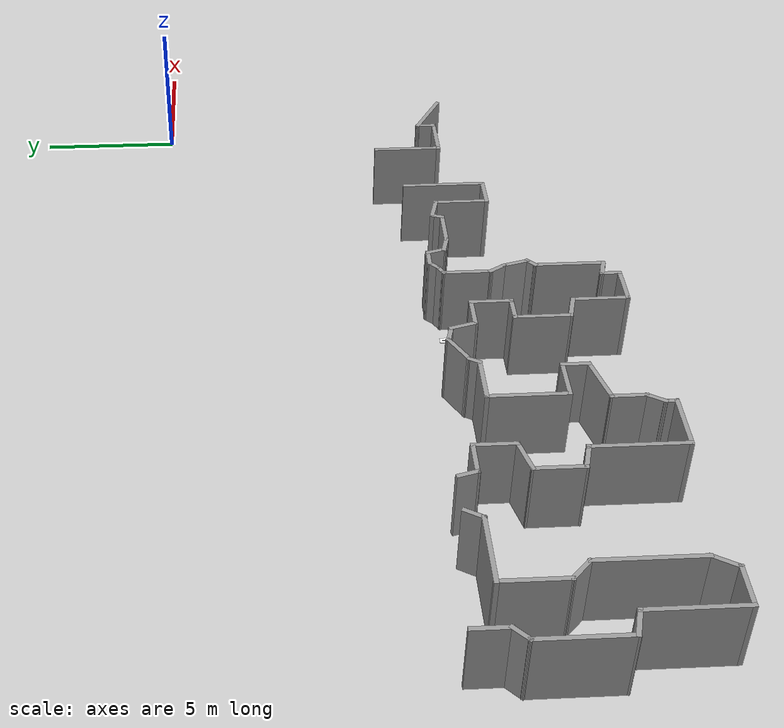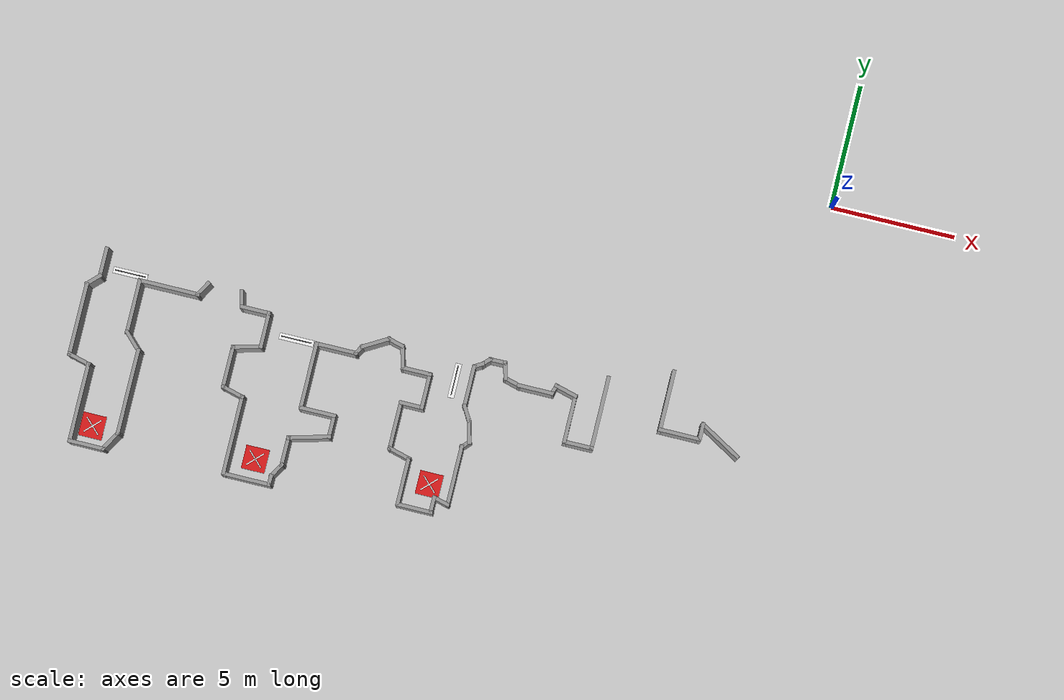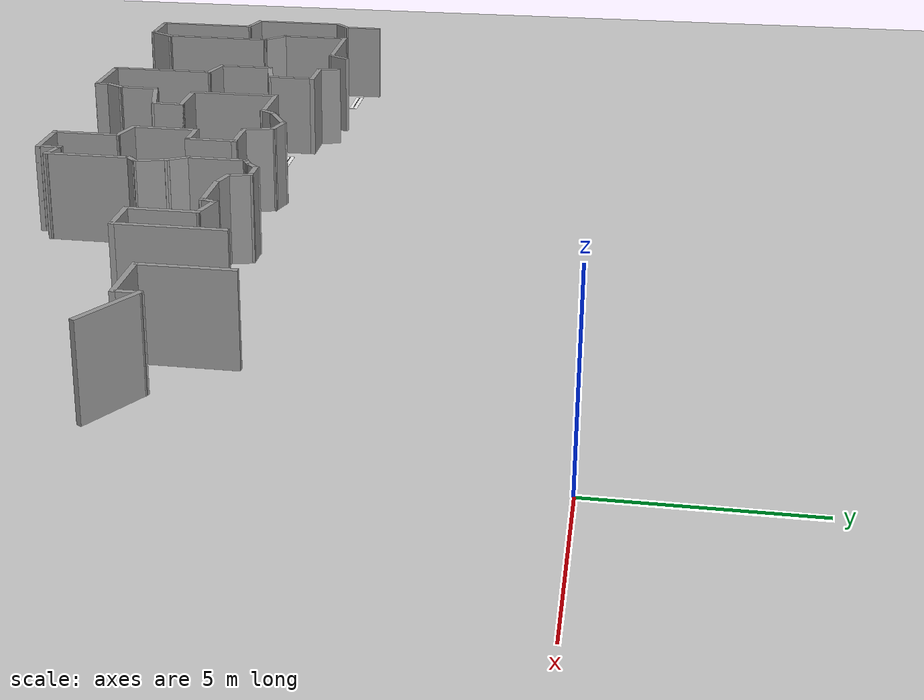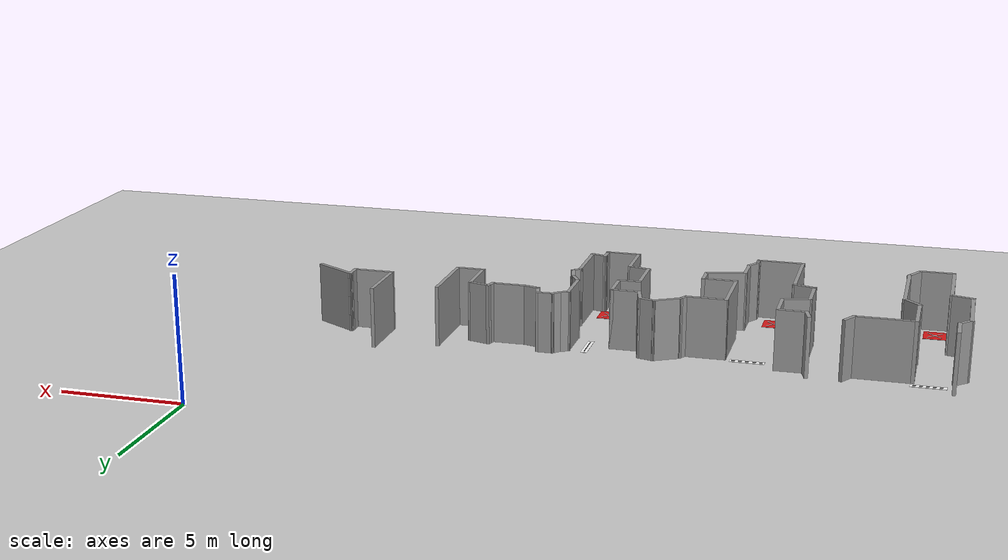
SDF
<sdf version="1.7">
 <world name="default">
  <model name="ground_plane">
   <static>1</static>
   <link name="link">
    <collision name="collision">
     <geometry><plane><normal>0 0 1</normal><size>100 100</size></plane></geometry>
     <surface>
      <contact><collide_bitmask>65535</collide_bitmask></contact>
      <friction><ode><mu>100</mu><mu2>50</mu2></ode></friction>
     </surface>
    </collision>
    <visual name="visual">
     <cast_shadows>0</cast_shadows>
     <geometry><plane><normal>0 0 1</normal><size>100 100</size></plane></geometry>
     <material>
      <script><uri>file://media/materials/scripts/gazebo.material</uri><name>Gazebo/Grey</name></script>
     </material>
    </visual>
   </link>
  </model>
  <model name="latest_world">
   <pose>-1.4911 -0.096187 0 0 -0 0</pose>
   <link name="Wall_100">
    <collision name="Wall_100_Collision">
     <geometry><box><size>1 0.15 2.5</size></box></geometry>
     <pose>0 0 1.25 0 -0 0</pose>
    </collision>
    <visual name="Wall_100_Visual">
     <pose>0 0 1.25 0 -0 0</pose>
     <geometry><box><size>1 0.15 2.5</size></box></geometry>
     <material>
      <script><uri>file://media/materials/scripts/gazebo.material</uri><name>Gazebo/Grey</name></script>
      <ambient>1 1 1 1</ambient>
     </material>
     <meta><layer>0</layer></meta>
    </visual>
    <pose>-10.3814 -12.0748 0 0 -0 -1.309</pose>
   </link>
   <link name="Wall_101">
    <collision name="Wall_101_Collision">
     <geometry><box><size>0.5 0.15 2.5</size></box></geometry>
     <pose>0 0 1.25 0 -0 0</pose>
    </collision>
    <visual name="Wall_101_Visual">
     <pose>0 0 1.25 0 -0 0</pose>
     <geometry><box><size>0.5 0.15 2.5</size></box></geometry>
     <material>
      <script><uri>file://media/materials/scripts/gazebo.material</uri><name>Gazebo/Grey</name></script>
      <ambient>1 1 1 1</ambient>
     </material>
     <meta><layer>0</layer></meta>
    </visual>
    <pose>-10.3951 -12.609 0 0 -0 -2.35619</pose>
   </link>
   <link name="Wall_102">
    <collision name="Wall_102_Collision">
     <geometry><box><size>2.5 0.15 2.5</size></box></geometry>
     <pose>0 0 1.25 0 -0 0</pose>
    </collision>
    <visual name="Wall_102_Visual">
     <pose>0 0 1.25 0 -0 0</pose>
     <geometry><box><size>2.5 0.15 2.5</size></box></geometry>
     <material>
      <script><uri>file://media/materials/scripts/gazebo.material</uri><name>Gazebo/Grey</name></script>
      <ambient>1 1 1 1</ambient>
     </material>
     <meta><layer>0</layer></meta>
    </visual>
    <pose>-10.5189 -13.9078 0 0 -0 -1.5708</pose>
   </link>
   <link name="Wall_103">
    <collision name="Wall_103_Collision">
     <geometry><box><size>0.75 0.15 2.5</size></box></geometry>
     <pose>0 0 1.25 0 -0 0</pose>
    </collision>
    <visual name="Wall_103_Visual">
     <pose>0 0 1.25 0 -0 0</pose>
     <geometry><box><size>0.75 0.15 2.5</size></box></geometry>
     <material>
      <script><uri>file://media/materials/scripts/gazebo.material</uri><name>Gazebo/Grey</name></script>
      <ambient>1 1 1 1</ambient>
     </material>
     <meta><layer>0</layer></meta>
    </visual>
    <pose>-10.8086 -15.0051 0 0 -0 2.87979</pose>
   </link>
   <link name="Wall_104">
    <collision name="Wall_104_Collision">
     <geometry><box><size>0.75 0.15 2.5</size></box></geometry>
     <pose>0 0 1.25 0 -0 0</pose>
    </collision>
    <visual name="Wall_104_Visual">
     <pose>0 0 1.25 0 -0 0</pose>
     <geometry><box><size>0.75 0.15 2.5</size></box></geometry>
     <material>
      <script><uri>file://media/materials/scripts/gazebo.material</uri><name>Gazebo/Grey</name></script>
      <ambient>1 1 1 1</ambient>
     </material>
     <meta><layer>0</layer></meta>
    </visual>
    <pose>-11.0984 -15.2275 0 0 -0 -1.5708</pose>
   </link>
   <link name="Wall_105">
    <collision name="Wall_105_Collision">
     <geometry><box><size>0.16 0.15 2.5</size></box></geometry>
     <pose>0 0 1.25 0 -0 0</pose>
    </collision>
    <visual name="Wall_105_Visual">
     <pose>0 0 1.25 0 -0 0</pose>
     <geometry><box><size>0.16 0.15 2.5</size></box></geometry>
     <material>
      <script><uri>file://media/materials/scripts/gazebo.material</uri><name>Gazebo/Grey</name></script>
      <ambient>1 1 1 1</ambient>
     </material>
     <meta><layer>0</layer></meta>
    </visual>
    <pose>-11.0934 -15.5275 0 0 -0 0</pose>
   </link>
   <link name="Wall_106">
    <collision name="Wall_106_Collision">
     <geometry><box><size>1.5 0.15 2.5</size></box></geometry>
     <pose>0 0 1.25 0 -0 0</pose>
    </collision>
    <visual name="Wall_106_Visual">
     <pose>0 0 1.25 0 -0 0</pose>
     <geometry><box><size>1.5 0.15 2.5</size></box></geometry>
     <material>
      <script><uri>file://media/materials/scripts/gazebo.material</uri><name>Gazebo/Grey</name></script>
      <ambient>1 1 1 1</ambient>
     </material>
     <meta><layer>0</layer></meta>
    </visual>
    <pose>-11.7634 -15.5275 0 0 -0 3.14159</pose>
   </link>
   <link name="Wall_107">
    <collision name="Wall_107_Collision">
     <geometry><box><size>2 0.15 2.5</size></box></geometry>
     <pose>0 0 1.25 0 -0 0</pose>
    </collision>
    <visual name="Wall_107_Visual">
     <pose>0 0 1.25 0 -0 0</pose>
     <geometry><box><size>2 0.15 2.5</size></box></geometry>
     <material>
      <script><uri>file://media/materials/scripts/gazebo.material</uri><name>Gazebo/Grey</name></script>
      <ambient>1 1 1 1</ambient>
     </material>
     <meta><layer>0</layer></meta>
    </visual>
    <pose>-12.4384 -14.6025 0 0 -0 1.5708</pose>
   </link>
   <link name="Wall_108">
    <collision name="Wall_108_Collision">
     <geometry><box><size>1 0.15 2.5</size></box></geometry>
     <pose>0 0 1.25 0 -0 0</pose>
    </collision>
    <visual name="Wall_108_Visual">
     <pose>0 0 1.25 0 -0 0</pose>
     <geometry><box><size>1 0.15 2.5</size></box></geometry>
     <material>
      <script><uri>file://media/materials/scripts/gazebo.material</uri><name>Gazebo/Grey</name></script>
      <ambient>1 1 1 1</ambient>
     </material>
     <meta><layer>0</layer></meta>
    </visual>
    <pose>-12.8489 -13.5675 0 0 -0 2.87979</pose>
   </link>
   <link name="Wall_109">
    <collision name="Wall_109_Collision">
     <geometry><box><size>2 0.15 2.5</size></box></geometry>
     <pose>0 0 1.25 0 -0 0</pose>
    </collision>
    <visual name="Wall_109_Visual">
     <pose>0 0 1.25 0 -0 0</pose>
     <geometry><box><size>2 0.15 2.5</size></box></geometry>
     <material>
      <script><uri>file://media/materials/scripts/gazebo.material</uri><name>Gazebo/Grey</name></script>
      <ambient>1 1 1 1</ambient>
     </material>
     <meta><layer>0</layer></meta>
    </visual>
    <pose>-13.2595 -12.5325 0 0 -0 1.5708</pose>
   </link>
   <link name="Wall_110">
    <collision name="Wall_110_Collision">
     <geometry><box><size>1 0.15 2.5</size></box></geometry>
     <pose>0 0 1.25 0 -0 0</pose>
    </collision>
    <visual name="Wall_110_Visual">
     <pose>0 0 1.25 0 -0 0</pose>
     <geometry><box><size>1 0.15 2.5</size></box></geometry>
     <material>
      <script><uri>file://media/materials/scripts/gazebo.material</uri><name>Gazebo/Grey</name></script>
      <ambient>1 1 1 1</ambient>
     </material>
     <meta><layer>0</layer></meta>
    </visual>
    <pose>-12.8345 -11.6075 0 0 -0 0</pose>
   </link>
   <link name="Wall_111">
    <collision name="Wall_111_Collision">
     <geometry><box><size>1.5 0.15 2.5</size></box></geometry>
     <pose>0 0 1.25 0 -0 0</pose>
    </collision>
    <visual name="Wall_111_Visual">
     <pose>0 0 1.25 0 -0 0</pose>
     <geometry><box><size>1.5 0.15 2.5</size></box></geometry>
     <material>
      <script><uri>file://media/materials/scripts/gazebo.material</uri><name>Gazebo/Grey</name></script>
      <ambient>1 1 1 1</ambient>
     </material>
     <meta><layer>0</layer></meta>
    </visual>
    <pose>-12.4095 -10.9325 0 0 -0 1.5708</pose>
   </link>
   <link name="Wall_112">
    <collision name="Wall_112_Collision">
     <geometry><box><size>1.25 0.15 2.5</size></box></geometry>
     <pose>0 0 1.25 0 -0 0</pose>
    </collision>
    <visual name="Wall_112_Visual">
     <pose>0 0 1.25 0 -0 0</pose>
     <geometry><box><size>1.25 0.15 2.5</size></box></geometry>
     <material>
      <script><uri>file://media/materials/scripts/gazebo.material</uri><name>Gazebo/Grey</name></script>
      <ambient>1 1 1 1</ambient>
     </material>
     <meta><layer>0</layer></meta>
    </visual>
    <pose>-12.9595 -10.2575 0 0 -0 3.14159</pose>
   </link>
   <link name="Wall_113">
    <collision name="Wall_113_Collision">
     <geometry><box><size>1 0.15 2.5</size></box></geometry>
     <pose>0 0 1.25 0 -0 0</pose>
    </collision>
    <visual name="Wall_113_Visual">
     <pose>0 0 1.25 0 -0 0</pose>
     <geometry><box><size>1 0.15 2.5</size></box></geometry>
     <material>
      <script><uri>file://media/materials/scripts/gazebo.material</uri><name>Gazebo/Grey</name></script>
      <ambient>1 1 1 1</ambient>
     </material>
     <meta><layer>0</layer></meta>
    </visual>
    <pose>-13.6195 -9.84696 0 0 -0 1.8326</pose>
   </link>
   <link name="Wall_114">
    <collision name="Wall_114_Collision">
     <geometry><box><size>0.75 0.15 2.5</size></box></geometry>
     <pose>0 0 1.25 0 -0 0</pose>
    </collision>
    <visual name="Wall_114_Visual">
     <pose>0 0 1.25 0 -0 0</pose>
     <geometry><box><size>0.75 0.15 2.5</size></box></geometry>
     <material>
      <script><uri>file://media/materials/scripts/gazebo.material</uri><name>Gazebo/Grey</name></script>
      <ambient>1 1 1 1</ambient>
     </material>
     <meta><layer>0</layer></meta>
    </visual>
    <pose>-14.0192 -9.3588 0 0 -0 2.87979</pose>
   </link>
   <link name="Wall_115">
    <collision name="Wall_115_Collision">
     <geometry><box><size>1.25 0.15 2.5</size></box></geometry>
     <pose>0 0 1.25 0 -0 0</pose>
    </collision>
    <visual name="Wall_115_Visual">
     <pose>0 0 1.25 0 -0 0</pose>
     <geometry><box><size>1.25 0.15 2.5</size></box></geometry>
     <material>
      <script><uri>file://media/materials/scripts/gazebo.material</uri><name>Gazebo/Grey</name></script>
      <ambient>1 1 1 1</ambient>
     </material>
     <meta><layer>0</layer></meta>
    </visual>
    <pose>-14.7853 -9.55615 0 0 -0 -2.61799</pose>
   </link>
   <link name="Wall_116">
    <collision name="Wall_116_Collision">
     <geometry><box><size>0.5 0.15 2.5</size></box></geometry>
     <pose>0 0 1.25 0 -0 0</pose>
    </collision>
    <visual name="Wall_116_Visual">
     <pose>0 0 1.25 0 -0 0</pose>
     <geometry><box><size>0.5 0.15 2.5</size></box></geometry>
     <material>
      <script><uri>file://media/materials/scripts/gazebo.material</uri><name>Gazebo/Grey</name></script>
      <ambient>1 1 1 1</ambient>
     </material>
     <meta><layer>0</layer></meta>
    </visual>
    <pose>-15.3491 -9.98271 0 0 -0 -2.0944</pose>
   </link>
   <link name="Wall_117">
    <collision name="Wall_117_Collision">
     <geometry><box><size>1.75 0.15 2.5</size></box></geometry>
     <pose>0 0 1.25 0 -0 0</pose>
    </collision>
    <visual name="Wall_117_Visual">
     <pose>0 0 1.25 0 -0 0</pose>
     <geometry><box><size>1.75 0.15 2.5</size></box></geometry>
     <material>
      <script><uri>file://media/materials/scripts/gazebo.material</uri><name>Gazebo/Grey</name></script>
      <ambient>1 1 1 1</ambient>
     </material>
     <meta><layer>0</layer></meta>
    </visual>
    <pose>-16.2366 -10.1343 0 0 -0 3.14159</pose>
   </link>
   <link name="Wall_118">
    <collision name="Wall_118_Collision">
     <geometry><box><size>2.75 0.15 2.5</size></box></geometry>
     <pose>0 0 1.25 0 -0 0</pose>
    </collision>
    <visual name="Wall_118_Visual">
     <pose>0 0 1.25 0 -0 0</pose>
     <geometry><box><size>2.75 0.15 2.5</size></box></geometry>
     <material>
      <script><uri>file://media/materials/scripts/gazebo.material</uri><name>Gazebo/Grey</name></script>
      <ambient>1 1 1 1</ambient>
     </material>
     <meta><layer>0</layer></meta>
    </visual>
    <pose>-17.0366 -11.4343 0 0 -0 -1.5708</pose>
   </link>
   <link name="Wall_119">
    <collision name="Wall_119_Collision">
     <geometry><box><size>1.5 0.15 2.5</size></box></geometry>
     <pose>0 0 1.25 0 -0 0</pose>
    </collision>
    <visual name="Wall_119_Visual">
     <pose>0 0 1.25 0 -0 0</pose>
     <geometry><box><size>1.5 0.15 2.5</size></box></geometry>
     <material>
      <script><uri>file://media/materials/scripts/gazebo.material</uri><name>Gazebo/Grey</name></script>
      <ambient>1 1 1 1</ambient>
     </material>
     <meta><layer>0</layer></meta>
    </visual>
    <pose>-16.3616 -12.7343 0 0 -0 0</pose>
   </link>
   <link name="Wall_120">
    <collision name="Wall_120_Collision">
     <geometry><box><size>1 0.15 2.5</size></box></geometry>
     <pose>0 0 1.25 0 -0 0</pose>
    </collision>
    <visual name="Wall_120_Visual">
     <pose>0 0 1.25 0 -0 0</pose>
     <geometry><box><size>1 0.15 2.5</size></box></geometry>
     <material>
      <script><uri>file://media/materials/scripts/gazebo.material</uri><name>Gazebo/Grey</name></script>
      <ambient>1 1 1 1</ambient>
     </material>
     <meta><layer>0</layer></meta>
    </visual>
    <pose>-15.6866 -13.1593 0 0 -0 -1.5708</pose>
   </link>
   <link name="Wall_121">
    <collision name="Wall_121_Collision">
     <geometry><box><size>1.75 0.15 2.5</size></box></geometry>
     <pose>0 0 1.25 0 -0 0</pose>
    </collision>
    <visual name="Wall_121_Visual">
     <pose>0 0 1.25 0 -0 0</pose>
     <geometry><box><size>1.75 0.15 2.5</size></box></geometry>
     <material>
      <script><uri>file://media/materials/scripts/gazebo.material</uri><name>Gazebo/Grey</name></script>
      <ambient>1 1 1 1</ambient>
     </material>
     <meta><layer>0</layer></meta>
    </visual>
    <pose>-16.4594 -13.7913 0 0 -0 -2.87979</pose>
   </link>
   <link name="Wall_122">
    <collision name="Wall_122_Collision">
     <geometry><box><size>1.25 0.15 2.5</size></box></geometry>
     <pose>0 0 1.25 0 -0 0</pose>
    </collision>
    <visual name="Wall_122_Visual">
     <pose>0 0 1.25 0 -0 0</pose>
     <geometry><box><size>1.25 0.15 2.5</size></box></geometry>
     <material>
      <script><uri>file://media/materials/scripts/gazebo.material</uri><name>Gazebo/Grey</name></script>
      <ambient>1 1 1 1</ambient>
     </material>
     <meta><layer>0</layer></meta>
    </visual>
    <pose>-17.2321 -14.5484 0 0 -0 -1.5708</pose>
   </link>
   <link name="Wall_123">
    <collision name="Wall_123_Collision">
     <geometry><box><size>0.75 0.15 2.5</size></box></geometry>
     <pose>0 0 1.25 0 -0 0</pose>
    </collision>
    <visual name="Wall_123_Visual">
     <pose>0 0 1.25 0 -0 0</pose>
     <geometry><box><size>0.75 0.15 2.5</size></box></geometry>
     <material>
      <script><uri>file://media/materials/scripts/gazebo.material</uri><name>Gazebo/Grey</name></script>
      <ambient>1 1 1 1</ambient>
     </material>
     <meta><layer>0</layer></meta>
    </visual>
    <pose>-17.3821 -15.3582 0 0 -0 -2.0944</pose>
   </link>
   <link name="Wall_124">
    <collision name="Wall_124_Collision">
     <geometry><box><size>0.5 0.15 2.5</size></box></geometry>
     <pose>0 0 1.25 0 -0 0</pose>
    </collision>
    <visual name="Wall_124_Visual">
     <pose>0 0 1.25 0 -0 0</pose>
     <geometry><box><size>0.5 0.15 2.5</size></box></geometry>
     <material>
      <script><uri>file://media/materials/scripts/gazebo.material</uri><name>Gazebo/Grey</name></script>
      <ambient>1 1 1 1</ambient>
     </material>
     <meta><layer>0</layer></meta>
    </visual>
    <pose>-17.5321 -15.793 0 0 -0 -1.5708</pose>
   </link>
   <link name="Wall_125">
    <collision name="Wall_125_Collision">
     <geometry><box><size>2 0.15 2.5</size></box></geometry>
     <pose>0 0 1.25 0 -0 0</pose>
    </collision>
    <visual name="Wall_125_Visual">
     <pose>0 0 1.25 0 -0 0</pose>
     <geometry><box><size>2 0.15 2.5</size></box></geometry>
     <material>
      <script><uri>file://media/materials/scripts/gazebo.material</uri><name>Gazebo/Grey</name></script>
      <ambient>1 1 1 1</ambient>
     </material>
     <meta><layer>0</layer></meta>
    </visual>
    <pose>-18.4571 -15.968 0 0 -0 3.14159</pose>
   </link>
   <link name="Wall_126">
    <collision name="Wall_126_Collision">
     <geometry><box><size>3.25 0.15 2.5</size></box></geometry>
     <pose>0 0 1.25 0 -0 0</pose>
    </collision>
    <visual name="Wall_126_Visual">
     <pose>0 0 1.25 0 -0 0</pose>
     <geometry><box><size>3.25 0.15 2.5</size></box></geometry>
     <material>
      <script><uri>file://media/materials/scripts/gazebo.material</uri><name>Gazebo/Grey</name></script>
      <ambient>1 1 1 1</ambient>
     </material>
     <meta><layer>0</layer></meta>
    </visual>
    <pose>-19.3821 -14.418 0 0 -0 1.5708</pose>
   </link>
   <link name="Wall_127">
    <collision name="Wall_127_Collision">
     <geometry><box><size>1 0.15 2.5</size></box></geometry>
     <pose>0 0 1.25 0 -0 0</pose>
    </collision>
    <visual name="Wall_127_Visual">
     <pose>0 0 1.25 0 -0 0</pose>
     <geometry><box><size>1 0.15 2.5</size></box></geometry>
     <material>
      <script><uri>file://media/materials/scripts/gazebo.material</uri><name>Gazebo/Grey</name></script>
      <ambient>1 1 1 1</ambient>
     </material>
     <meta><layer>0</layer></meta>
    </visual>
    <pose>-19.7926 -12.758 0 0 -0 2.87979</pose>
   </link>
   <link name="Wall_128">
    <collision name="Wall_128_Collision">
     <geometry><box><size>1.75 0.15 2.5</size></box></geometry>
     <pose>0 0 1.25 0 -0 0</pose>
    </collision>
    <visual name="Wall_128_Visual">
     <pose>0 0 1.25 0 -0 0</pose>
     <geometry><box><size>1.75 0.15 2.5</size></box></geometry>
     <material>
      <script><uri>file://media/materials/scripts/gazebo.material</uri><name>Gazebo/Grey</name></script>
      <ambient>1 1 1 1</ambient>
     </material>
     <meta><layer>0</layer></meta>
    </visual>
    <pose>-20.2032 -11.848 0 0 -0 1.5708</pose>
   </link>
   <link name="Wall_129">
    <collision name="Wall_129_Collision">
     <geometry><box><size>1.25 0.15 2.5</size></box></geometry>
     <pose>0 0 1.25 0 -0 0</pose>
    </collision>
    <visual name="Wall_129_Visual">
     <pose>0 0 1.25 0 -0 0</pose>
     <geometry><box><size>1.25 0.15 2.5</size></box></geometry>
     <material>
      <script><uri>file://media/materials/scripts/gazebo.material</uri><name>Gazebo/Grey</name></script>
      <ambient>1 1 1 1</ambient>
     </material>
     <meta><layer>0</layer></meta>
    </visual>
    <pose>-19.6719 -10.9056 0 0 -0 0.261799</pose>
   </link>
   <link name="Wall_130">
    <collision name="Wall_130_Collision">
     <geometry><box><size>1.5 0.15 2.5</size></box></geometry>
     <pose>0 0 1.25 0 -0 0</pose>
    </collision>
    <visual name="Wall_130_Visual">
     <pose>0 0 1.25 0 -0 0</pose>
     <geometry><box><size>1.5 0.15 2.5</size></box></geometry>
     <material>
      <script><uri>file://media/materials/scripts/gazebo.material</uri><name>Gazebo/Grey</name></script>
      <ambient>1 1 1 1</ambient>
     </material>
     <meta><layer>0</layer></meta>
    </visual>
    <pose>-19.1406 -10.0883 0 0 -0 1.5708</pose>
   </link>
   <link name="Wall_131">
    <collision name="Wall_131_Collision">
     <geometry><box><size>1.25 0.15 2.5</size></box></geometry>
     <pose>0 0 1.25 0 -0 0</pose>
    </collision>
    <visual name="Wall_131_Visual">
     <pose>0 0 1.25 0 -0 0</pose>
     <geometry><box><size>1.25 0.15 2.5</size></box></geometry>
     <material>
      <script><uri>file://media/materials/scripts/gazebo.material</uri><name>Gazebo/Grey</name></script>
      <ambient>1 1 1 1</ambient>
     </material>
     <meta><layer>0</layer></meta>
    </visual>
    <pose>-19.6906 -9.41329 0 0 -0 3.14159</pose>
   </link>
   <link name="Wall_132">
    <collision name="Wall_132_Collision">
     <geometry><box><size>0.75 0.15 2.5</size></box></geometry>
     <pose>0 0 1.25 0 -0 0</pose>
    </collision>
    <visual name="Wall_132_Visual">
     <pose>0 0 1.25 0 -0 0</pose>
     <geometry><box><size>0.75 0.15 2.5</size></box></geometry>
     <material>
      <script><uri>file://media/materials/scripts/gazebo.material</uri><name>Gazebo/Grey</name></script>
      <ambient>1 1 1 1</ambient>
     </material>
     <meta><layer>0</layer></meta>
    </visual>
    <pose>-20.3183 -9.12351 0 0 -0 1.8326</pose>
   </link>
   <link name="Wall_134">
    <collision name="Wall_134_Collision">
     <geometry><box><size>0.75 0.15 2.5</size></box></geometry>
     <pose>0 0 1.25 0 -0 0</pose>
    </collision>
    <visual name="Wall_134_Visual">
     <pose>0 0 1.25 0 -0 0</pose>
     <geometry><box><size>0.75 0.15 2.5</size></box></geometry>
     <material>
      <script><uri>file://media/materials/scripts/gazebo.material</uri><name>Gazebo/Grey</name></script>
      <ambient>1 1 1 1</ambient>
     </material>
     <meta><layer>0</layer></meta>
    </visual>
    <pose>-21.8959 -9.09354 0 0 -0 -2.0944</pose>
   </link>
   <link name="Wall_135">
    <collision name="Wall_135_Collision">
     <geometry><box><size>2.5 0.15 2.5</size></box></geometry>
     <pose>0 0 1.25 0 -0 0</pose>
    </collision>
    <visual name="Wall_135_Visual">
     <pose>0 0 1.25 0 -0 0</pose>
     <geometry><box><size>2.5 0.15 2.5</size></box></geometry>
     <material>
      <script><uri>file://media/materials/scripts/gazebo.material</uri><name>Gazebo/Grey</name></script>
      <ambient>1 1 1 1</ambient>
     </material>
     <meta><layer>0</layer></meta>
    </visual>
    <pose>-23.2209 -9.35335 0 0 -0 3.14159</pose>
   </link>
   <link name="Wall_136">
    <collision name="Wall_136_Collision">
     <geometry><box><size>2.25 0.15 2.5</size></box></geometry>
     <pose>0 0 1.25 0 -0 0</pose>
    </collision>
    <visual name="Wall_136_Visual">
     <pose>0 0 1.25 0 -0 0</pose>
     <geometry><box><size>2.25 0.15 2.5</size></box></geometry>
     <material>
      <script><uri>file://media/materials/scripts/gazebo.material</uri><name>Gazebo/Grey</name></script>
      <ambient>1 1 1 1</ambient>
     </material>
     <meta><layer>0</layer></meta>
    </visual>
    <pose>-24.3959 -10.4033 0 0 -0 -1.5708</pose>
   </link>
   <link name="Wall_137">
    <collision name="Wall_137_Collision">
     <geometry><box><size>1 0.15 2.5</size></box></geometry>
     <pose>0 0 1.25 0 -0 0</pose>
    </collision>
    <visual name="Wall_137_Visual">
     <pose>0 0 1.25 0 -0 0</pose>
     <geometry><box><size>1 0.15 2.5</size></box></geometry>
     <material>
      <script><uri>file://media/materials/scripts/gazebo.material</uri><name>Gazebo/Grey</name></script>
      <ambient>1 1 1 1</ambient>
     </material>
     <meta><layer>0</layer></meta>
    </visual>
    <pose>-24.0954 -11.7539 0 0 -0 -0.785398</pose>
   </link>
   <link name="Wall_138">
    <collision name="Wall_138_Collision">
     <geometry><box><size>3.5 0.15 2.5</size></box></geometry>
     <pose>0 0 1.25 0 -0 0</pose>
    </collision>
    <visual name="Wall_138_Visual">
     <pose>0 0 1.25 0 -0 0</pose>
     <geometry><box><size>3.5 0.15 2.5</size></box></geometry>
     <material>
      <script><uri>file://media/materials/scripts/gazebo.material</uri><name>Gazebo/Grey</name></script>
      <ambient>1 1 1 1</ambient>
     </material>
     <meta><layer>0</layer></meta>
    </visual>
    <pose>-23.7949 -13.7294 0 0 -0 -1.5708</pose>
   </link>
   <link name="Wall_139">
    <collision name="Wall_139_Collision">
     <geometry><box><size>1 0.15 2.5</size></box></geometry>
     <pose>0 0 1.25 0 -0 0</pose>
    </collision>
    <visual name="Wall_139_Visual">
     <pose>0 0 1.25 0 -0 0</pose>
     <geometry><box><size>1 0.15 2.5</size></box></geometry>
     <material>
      <script><uri>file://media/materials/scripts/gazebo.material</uri><name>Gazebo/Grey</name></script>
      <ambient>1 1 1 1</ambient>
     </material>
     <meta><layer>0</layer></meta>
    </visual>
    <pose>-24.0074 -15.7725 0 0 -0 -2.0944</pose>
   </link>
   <link name="Wall_140">
    <collision name="Wall_140_Collision">
     <geometry><box><size>1.5 0.15 2.5</size></box></geometry>
     <pose>0 0 1.25 0 -0 0</pose>
    </collision>
    <visual name="Wall_140_Visual">
     <pose>0 0 1.25 0 -0 0</pose>
     <geometry><box><size>1.5 0.15 2.5</size></box></geometry>
     <material>
      <script><uri>file://media/materials/scripts/gazebo.material</uri><name>Gazebo/Grey</name></script>
      <ambient>1 1 1 1</ambient>
     </material>
     <meta><layer>0</layer></meta>
    </visual>
    <pose>-24.8949 -16.1405 0 0 -0 3.14159</pose>
   </link>
   <link name="Wall_141">
    <collision name="Wall_141_Collision">
     <geometry><box><size>3.25 0.15 2.5</size></box></geometry>
     <pose>0 0 1.25 0 -0 0</pose>
    </collision>
    <visual name="Wall_141_Visual">
     <pose>0 0 1.25 0 -0 0</pose>
     <geometry><box><size>3.25 0.15 2.5</size></box></geometry>
     <material>
      <script><uri>file://media/materials/scripts/gazebo.material</uri><name>Gazebo/Grey</name></script>
      <ambient>1 1 1 1</ambient>
     </material>
     <meta><layer>0</layer></meta>
    </visual>
    <pose>-25.5699 -14.5905 0 0 -0 1.5708</pose>
   </link>
   <link name="Wall_142">
    <collision name="Wall_142_Collision">
     <geometry><box><size>1 0.15 2.5</size></box></geometry>
     <pose>0 0 1.25 0 -0 0</pose>
    </collision>
    <visual name="Wall_142_Visual">
     <pose>0 0 1.25 0 -0 0</pose>
     <geometry><box><size>1 0.15 2.5</size></box></geometry>
     <material>
      <script><uri>file://media/materials/scripts/gazebo.material</uri><name>Gazebo/Grey</name></script>
      <ambient>1 1 1 1</ambient>
     </material>
     <meta><layer>0</layer></meta>
    </visual>
    <pose>-25.9804 -12.9305 0 0 -0 2.87979</pose>
   </link>
   <link name="Wall_143">
    <collision name="Wall_143_Collision">
     <geometry><box><size>3 0.15 2.5</size></box></geometry>
     <pose>0 0 1.25 0 -0 0</pose>
    </collision>
    <visual name="Wall_143_Visual">
     <pose>0 0 1.25 0 -0 0</pose>
     <geometry><box><size>3 0.15 2.5</size></box></geometry>
     <material>
      <script><uri>file://media/materials/scripts/gazebo.material</uri><name>Gazebo/Grey</name></script>
      <ambient>1 1 1 1</ambient>
     </material>
     <meta><layer>0</layer></meta>
    </visual>
    <pose>-26.3909 -11.3955 0 0 -0 1.5708</pose>
   </link>
   <link name="Wall_144">
    <collision name="Wall_144_Collision">
     <geometry><box><size>0.75 0.15 2.5</size></box></geometry>
     <pose>0 0 1.25 0 -0 0</pose>
    </collision>
    <visual name="Wall_144_Visual">
     <pose>0 0 1.25 0 -0 0</pose>
     <geometry><box><size>0.75 0.15 2.5</size></box></geometry>
     <material>
      <script><uri>file://media/materials/scripts/gazebo.material</uri><name>Gazebo/Grey</name></script>
      <ambient>1 1 1 1</ambient>
     </material>
     <meta><layer>0</layer></meta>
    </visual>
    <pose>-26.1788 -9.75839 0 0 -0 0.785398</pose>
   </link>
   <link name="Wall_145">
    <collision name="Wall_145_Collision">
     <geometry><box><size>1.25 0.15 2.5</size></box></geometry>
     <pose>0 0 1.25 0 -0 0</pose>
    </collision>
    <visual name="Wall_145_Visual">
     <pose>0 0 1.25 0 -0 0</pose>
     <geometry><box><size>1.25 0.15 2.5</size></box></geometry>
     <material>
      <script><uri>file://media/materials/scripts/gazebo.material</uri><name>Gazebo/Grey</name></script>
      <ambient>1 1 1 1</ambient>
     </material>
     <meta><layer>0</layer></meta>
    </visual>
    <pose>-25.9667 -8.99625 0 0 -0 1.5708</pose>
   </link>
   <link name="Wall_80">
    <collision name="Wall_80_Collision">
     <geometry><box><size>2 0.15 2.5</size></box></geometry>
     <pose>0 0 1.25 0 -0 0</pose>
    </collision>
    <visual name="Wall_80_Visual">
     <pose>0 0 1.25 0 -0 0</pose>
     <geometry><box><size>2 0.15 2.5</size></box></geometry>
     <material>
      <script><uri>file://media/materials/scripts/gazebo.material</uri><name>Gazebo/Grey</name></script>
      <ambient>1 1 1 1</ambient>
     </material>
     <meta><layer>0</layer></meta>
    </visual>
    <pose>-0.693236 -10.1014 0 0 -0 2.61799</pose>
   </link>
   <link name="Wall_81">
    <collision name="Wall_81_Collision">
     <geometry><box><size>0.75 0.15 2.5</size></box></geometry>
     <pose>0 0 1.25 0 -0 0</pose>
    </collision>
    <visual name="Wall_81_Visual">
     <pose>0 0 1.25 0 -0 0</pose>
     <geometry><box><size>0.75 0.15 2.5</size></box></geometry>
     <material>
      <script><uri>file://media/materials/scripts/gazebo.material</uri><name>Gazebo/Grey</name></script>
      <ambient>1 1 1 1</ambient>
     </material>
     <meta><layer>0</layer></meta>
    </visual>
    <pose>-1.49431 -9.93891 0 0 -0 -1.5708</pose>
   </link>
   <link name="Wall_82">
    <collision name="Wall_82_Collision">
     <geometry><box><size>1.75 0.15 2.5</size></box></geometry>
     <pose>0 0 1.25 0 -0 0</pose>
    </collision>
    <visual name="Wall_82_Visual">
     <pose>0 0 1.25 0 -0 0</pose>
     <geometry><box><size>1.75 0.15 2.5</size></box></geometry>
     <material>
      <script><uri>file://media/materials/scripts/gazebo.material</uri><name>Gazebo/Grey</name></script>
      <ambient>1 1 1 1</ambient>
     </material>
     <meta><layer>0</layer></meta>
    </visual>
    <pose>-2.29431 -10.2389 0 0 -0 3.14159</pose>
   </link>
   <link name="Wall_83">
    <collision name="Wall_83_Collision">
     <geometry><box><size>2.5 0.15 2.5</size></box></geometry>
     <pose>0 0 1.25 0 -0 0</pose>
    </collision>
    <visual name="Wall_83_Visual">
     <pose>0 0 1.25 0 -0 0</pose>
     <geometry><box><size>2.5 0.15 2.5</size></box></geometry>
     <material>
      <script><uri>file://media/materials/scripts/gazebo.material</uri><name>Gazebo/Grey</name></script>
      <ambient>1 1 1 1</ambient>
     </material>
     <meta><layer>0</layer></meta>
    </visual>
    <pose>-3.09431 -9.06391 0 0 -0 1.5708</pose>
   </link>
   <link name="Wall_87">
    <collision name="Wall_87_Collision">
     <geometry><box><size>3 0.15 2.5</size></box></geometry>
     <pose>0 0 1.25 0 -0 0</pose>
    </collision>
    <visual name="Wall_87_Visual">
     <pose>0 0 1.25 0 -0 0</pose>
     <geometry><box><size>3 0.15 2.5</size></box></geometry>
     <material>
      <script><uri>file://media/materials/scripts/gazebo.material</uri><name>Gazebo/Grey</name></script>
      <ambient>1 1 1 1</ambient>
     </material>
     <meta><layer>0</layer></meta>
    </visual>
    <pose>-5.54431 -10.1639 0 0 -0 -1.5708</pose>
   </link>
   <link name="Wall_88">
    <collision name="Wall_88_Collision">
     <geometry><box><size>1.25 0.15 2.5</size></box></geometry>
     <pose>0 0 1.25 0 -0 0</pose>
    </collision>
    <visual name="Wall_88_Visual">
     <pose>0 0 1.25 0 -0 0</pose>
     <geometry><box><size>1.25 0.15 2.5</size></box></geometry>
     <material>
      <script><uri>file://media/materials/scripts/gazebo.material</uri><name>Gazebo/Grey</name></script>
      <ambient>1 1 1 1</ambient>
     </material>
     <meta><layer>0</layer></meta>
    </visual>
    <pose>-6.09431 -11.5889 0 0 -0 3.14159</pose>
   </link>
   <link name="Wall_89">
    <collision name="Wall_89_Collision">
     <geometry><box><size>2 0.15 2.5</size></box></geometry>
     <pose>0 0 1.25 0 -0 0</pose>
    </collision>
    <visual name="Wall_89_Visual">
     <pose>0 0 1.25 0 -0 0</pose>
     <geometry><box><size>2 0.15 2.5</size></box></geometry>
     <material>
      <script><uri>file://media/materials/scripts/gazebo.material</uri><name>Gazebo/Grey</name></script>
      <ambient>1 1 1 1</ambient>
     </material>
     <meta><layer>0</layer></meta>
    </visual>
    <pose>-6.64431 -10.6639 0 0 -0 1.5708</pose>
   </link>
   <link name="Wall_90">
    <collision name="Wall_90_Collision">
     <geometry><box><size>1 0.15 2.5</size></box></geometry>
     <pose>0 0 1.25 0 -0 0</pose>
    </collision>
    <visual name="Wall_90_Visual">
     <pose>0 0 1.25 0 -0 0</pose>
     <geometry><box><size>1 0.15 2.5</size></box></geometry>
     <material>
      <script><uri>file://media/materials/scripts/gazebo.material</uri><name>Gazebo/Grey</name></script>
      <ambient>1 1 1 1</ambient>
     </material>
     <meta><layer>0</layer></meta>
    </visual>
    <pose>-7.05483 -9.62891 0 0 -0 2.87979</pose>
   </link>
   <link name="Wall_91">
    <collision name="Wall_91_Collision">
     <geometry><box><size>0.5 0.15 2.5</size></box></geometry>
     <pose>0 0 1.25 0 -0 0</pose>
    </collision>
    <visual name="Wall_91_Visual">
     <pose>0 0 1.25 0 -0 0</pose>
     <geometry><box><size>0.5 0.15 2.5</size></box></geometry>
     <material>
      <script><uri>file://media/materials/scripts/gazebo.material</uri><name>Gazebo/Grey</name></script>
      <ambient>1 1 1 1</ambient>
     </material>
     <meta><layer>0</layer></meta>
    </visual>
    <pose>-7.51064 -9.68795 0 0 -0 -1.8326</pose>
   </link>
   <link name="Wall_92">
    <collision name="Wall_92_Collision">
     <geometry><box><size>1.5 0.15 2.5</size></box></geometry>
     <pose>0 0 1.25 0 -0 0</pose>
    </collision>
    <visual name="Wall_92_Visual">
     <pose>0 0 1.25 0 -0 0</pose>
     <geometry><box><size>1.5 0.15 2.5</size></box></geometry>
     <material>
      <script><uri>file://media/materials/scripts/gazebo.material</uri><name>Gazebo/Grey</name></script>
      <ambient>1 1 1 1</ambient>
     </material>
     <meta><layer>0</layer></meta>
    </visual>
    <pose>-8.23093 -9.85699 0 0 -0 3.14159</pose>
   </link>
   <link name="Wall_93">
    <collision name="Wall_93_Collision">
     <geometry><box><size>0.75 0.15 2.5</size></box></geometry>
     <pose>0 0 1.25 0 -0 0</pose>
    </collision>
    <visual name="Wall_93_Visual">
     <pose>0 0 1.25 0 -0 0</pose>
     <geometry><box><size>0.75 0.15 2.5</size></box></geometry>
     <material>
      <script><uri>file://media/materials/scripts/gazebo.material</uri><name>Gazebo/Grey</name></script>
      <ambient>1 1 1 1</ambient>
     </material>
     <meta><layer>0</layer></meta>
    </visual>
    <pose>-9.19571 -9.77934 0 0 -0 2.87979</pose>
   </link>
   <link name="Wall_94">
    <collision name="Wall_94_Collision">
     <geometry><box><size>0.75 0.15 2.5</size></box></geometry>
     <pose>0 0 1.25 0 -0 0</pose>
    </collision>
    <visual name="Wall_94_Visual">
     <pose>0 0 1.25 0 -0 0</pose>
     <geometry><box><size>0.75 0.15 2.5</size></box></geometry>
     <material>
      <script><uri>file://media/materials/scripts/gazebo.material</uri><name>Gazebo/Grey</name></script>
      <ambient>1 1 1 1</ambient>
     </material>
     <meta><layer>0</layer></meta>
    </visual>
    <pose>-9.56314 -9.41192 0 0 -0 1.8326</pose>
   </link>
   <link name="Wall_95">
    <collision name="Wall_95_Collision">
     <geometry><box><size>0.75 0.15 2.5</size></box></geometry>
     <pose>0 0 1.25 0 -0 0</pose>
    </collision>
    <visual name="Wall_95_Visual">
     <pose>0 0 1.25 0 -0 0</pose>
     <geometry><box><size>0.75 0.15 2.5</size></box></geometry>
     <material>
      <script><uri>file://media/materials/scripts/gazebo.material</uri><name>Gazebo/Grey</name></script>
      <ambient>1 1 1 1</ambient>
     </material>
     <meta><layer>0</layer></meta>
    </visual>
    <pose>-9.94078 -9.12214 0 0 -0 3.14159</pose>
   </link>
   <link name="Wall_96">
    <collision name="Wall_96_Collision">
     <geometry><box><size>0.5 0.15 2.5</size></box></geometry>
     <pose>0 0 1.25 0 -0 0</pose>
    </collision>
    <visual name="Wall_96_Visual">
     <pose>0 0 1.25 0 -0 0</pose>
     <geometry><box><size>0.5 0.15 2.5</size></box></geometry>
     <material>
      <script><uri>file://media/materials/scripts/gazebo.material</uri><name>Gazebo/Grey</name></script>
      <ambient>1 1 1 1</ambient>
     </material>
     <meta><layer>0</layer></meta>
    </visual>
    <pose>-10.3645 -9.24589 0 0 -0 -2.35619</pose>
   </link>
   <link name="Wall_97">
    <collision name="Wall_97_Collision">
     <geometry><box><size>0.5 0.15 2.5</size></box></geometry>
     <pose>0 0 1.25 0 -0 0</pose>
    </collision>
    <visual name="Wall_97_Visual">
     <pose>0 0 1.25 0 -0 0</pose>
     <geometry><box><size>0.5 0.15 2.5</size></box></geometry>
     <material>
      <script><uri>file://media/materials/scripts/gazebo.material</uri><name>Gazebo/Grey</name></script>
      <ambient>1 1 1 1</ambient>
     </material>
     <meta><layer>0</layer></meta>
    </visual>
    <pose>-10.6398 -9.45713 0 0 -0 -2.61799</pose>
   </link>
   <link name="Wall_98">
    <collision name="Wall_98_Collision">
     <geometry><box><size>1.75 0.15 2.5</size></box></geometry>
     <pose>0 0 1.25 0 -0 0</pose>
    </collision>
    <visual name="Wall_98_Visual">
     <pose>0 0 1.25 0 -0 0</pose>
     <geometry><box><size>1.75 0.15 2.5</size></box></geometry>
     <material>
      <script><uri>file://media/materials/scripts/gazebo.material</uri><name>Gazebo/Grey</name></script>
      <ambient>1 1 1 1</ambient>
     </material>
     <meta><layer>0</layer></meta>
    </visual>
    <pose>-10.7914 -10.3446 0 0 -0 -1.5708</pose>
   </link>
   <link name="Wall_99">
    <collision name="Wall_99_Collision">
     <geometry><box><size>0.75 0.15 2.5</size></box></geometry>
     <pose>0 0 1.25 0 -0 0</pose>
    </collision>
    <visual name="Wall_99_Visual">
     <pose>0 0 1.25 0 -0 0</pose>
     <geometry><box><size>0.75 0.15 2.5</size></box></geometry>
     <material>
      <script><uri>file://media/materials/scripts/gazebo.material</uri><name>Gazebo/Grey</name></script>
      <ambient>1 1 1 1</ambient>
     </material>
     <meta><layer>0</layer></meta>
    </visual>
    <pose>-10.6414 -11.4044 0 0 -0 -1.0472</pose>
   </link>
   <static>1</static>
  </model>
  <model name="semantic_marker_door_10">
   <static>true</static>
   <pose>-19.450 -10.150 0 0 0 3.1416</pose>
   <link name="link">
    <visual name="door_patch">
     <pose>0 0 0.005 0 0 0</pose>
     <geometry><box><size>1.40 0.26 0.010</size></box></geometry>
     <material><ambient>0.96 0.96 0.96 1</ambient><diffuse>0.96 0.96 0.96 1</diffuse></material>
    </visual>
    <visual name="door_center_line">
     <pose>0 0 0.011 0 0 0</pose>
     <geometry><box><size>1.22 0.03 0.005</size></box></geometry>
     <material><ambient>0.15 0.15 0.15 1</ambient><diffuse>0.15 0.15 0.15 1</diffuse></material>
    </visual>
   </link>
  </model>
  <model name="semantic_marker_door_11">
   <static>true</static>
   <pose>-12.950 -10.250 0 0 0 -1.5708</pose>
   <link name="link">
    <visual name="door_patch">
     <pose>0 0 0.005 0 0 0</pose>
     <geometry><box><size>1.40 0.26 0.010</size></box></geometry>
     <material><ambient>0.96 0.96 0.96 1</ambient><diffuse>0.96 0.96 0.96 1</diffuse></material>
    </visual>
    <visual name="door_center_line">
     <pose>0 0 0.011 0 0 0</pose>
     <geometry><box><size>1.22 0.03 0.005</size></box></geometry>
     <material><ambient>0.15 0.15 0.15 1</ambient><diffuse>0.15 0.15 0.15 1</diffuse></material>
    </visual>
   </link>
  </model>
  <model name="semantic_marker_door_12">
   <static>true</static>
   <pose>-26.500 -9.150 0 0 0 0.0000</pose>
   <link name="link">
    <visual name="door_patch">
     <pose>0 0 0.005 0 0 0</pose>
     <geometry><box><size>1.40 0.26 0.010</size></box></geometry>
     <material><ambient>0.96 0.96 0.96 1</ambient><diffuse>0.96 0.96 0.96 1</diffuse></material>
    </visual>
    <visual name="door_center_line">
     <pose>0 0 0.011 0 0 0</pose>
     <geometry><box><size>1.22 0.03 0.005</size></box></geometry>
     <material><ambient>0.15 0.15 0.15 1</ambient><diffuse>0.15 0.15 0.15 1</diffuse></material>
    </visual>
   </link>
  </model>
  <model name="semantic_marker_dead_end_5">
   <static>true</static>
   <pose>-26.500 -15.400 0 0 0 0.0000</pose>
   <link name="link">
    <visual name="dead_end_patch">
     <pose>0 0 0.005 0 0 0</pose>
     <geometry><box><size>0.95 0.95 0.010</size></box></geometry>
     <material><ambient>0.85 0.10 0.10 1</ambient><diffuse>0.85 0.10 0.10 1</diffuse></material>
    </visual>
    <visual name="cross_bar_a">
     <pose>0 0 0.011 0 0 0.78</pose>
     <geometry><box><size>0.83 0.05 0.005</size></box></geometry>
     <material><ambient>0.98 0.98 0.98 1</ambient><diffuse>0.98 0.98 0.98 1</diffuse></material>
    </visual>
    <visual name="cross_bar_b">
     <pose>0 0 0.011 0 0 -0.78</pose>
     <geometry><box><size>0.83 0.05 0.005</size></box></geometry>
     <material><ambient>0.98 0.98 0.98 1</ambient><diffuse>0.98 0.98 0.98 1</diffuse></material>
    </visual>
   </link>
  </model>
  <model name="semantic_marker_dead_end_6">
   <static>true</static>
   <pose>-19.900 -15.150 0 0 0 0.0000</pose>
   <link name="link">
    <visual name="dead_end_patch">
     <pose>0 0 0.005 0 0 0</pose>
     <geometry><box><size>0.95 0.95 0.010</size></box></geometry>
     <material><ambient>0.85 0.10 0.10 1</ambient><diffuse>0.85 0.10 0.10 1</diffuse></material>
    </visual>
    <visual name="cross_bar_a">
     <pose>0 0 0.011 0 0 0.78</pose>
     <geometry><box><size>0.83 0.05 0.005</size></box></geometry>
     <material><ambient>0.98 0.98 0.98 1</ambient><diffuse>0.98 0.98 0.98 1</diffuse></material>
    </visual>
    <visual name="cross_bar_b">
     <pose>0 0 0.011 0 0 -0.78</pose>
     <geometry><box><size>0.83 0.05 0.005</size></box></geometry>
     <material><ambient>0.98 0.98 0.98 1</ambient><diffuse>0.98 0.98 0.98 1</diffuse></material>
    </visual>
   </link>
  </model>
  <model name="semantic_marker_dead_end_7">
   <static>true</static>
   <pose>-12.950 -14.500 0 0 0 0.0000</pose>
   <link name="link">
    <visual name="dead_end_patch">
     <pose>0 0 0.005 0 0 0</pose>
     <geometry><box><size>0.95 0.95 0.010</size></box></geometry>
     <material><ambient>0.85 0.10 0.10 1</ambient><diffuse>0.85 0.10 0.10 1</diffuse></material>
    </visual>
    <visual name="cross_bar_a">
     <pose>0 0 0.011 0 0 0.78</pose>
     <geometry><box><size>0.83 0.05 0.005</size></box></geometry>
     <material><ambient>0.98 0.98 0.98 1</ambient><diffuse>0.98 0.98 0.98 1</diffuse></material>
    </visual>
    <visual name="cross_bar_b">
     <pose>0 0 0.011 0 0 -0.78</pose>
     <geometry><box><size>0.83 0.05 0.005</size></box></geometry>
     <material><ambient>0.98 0.98 0.98 1</ambient><diffuse>0.98 0.98 0.98 1</diffuse></material>
    </visual>
   </link>
  </model>
 </world>
</sdf>
